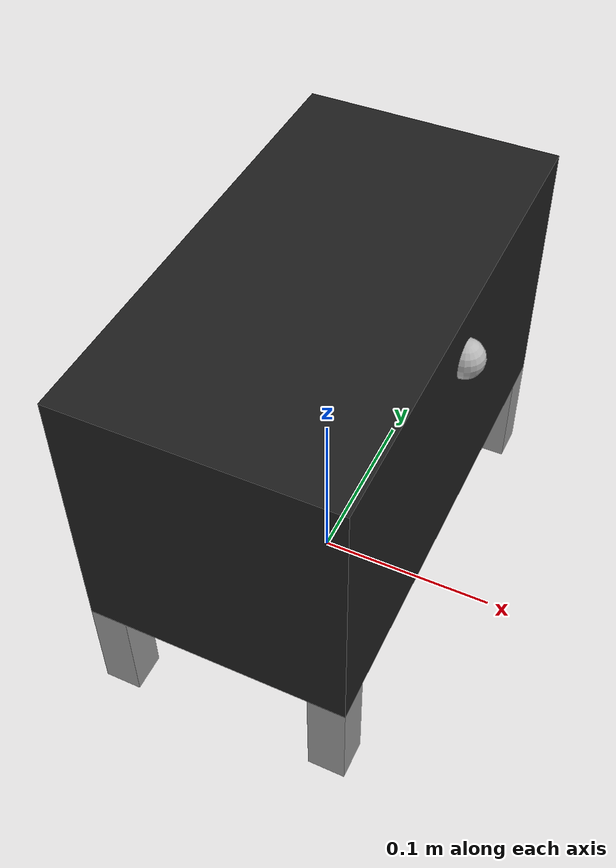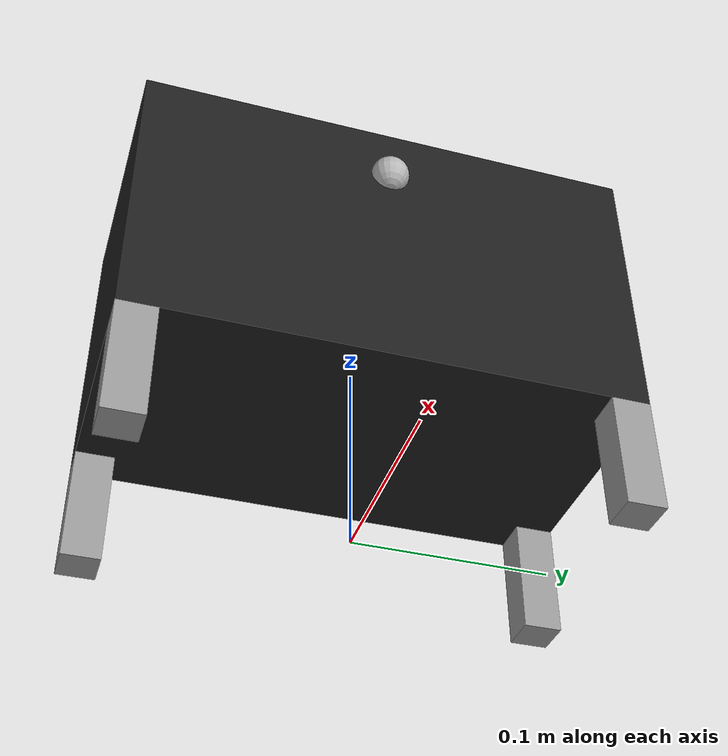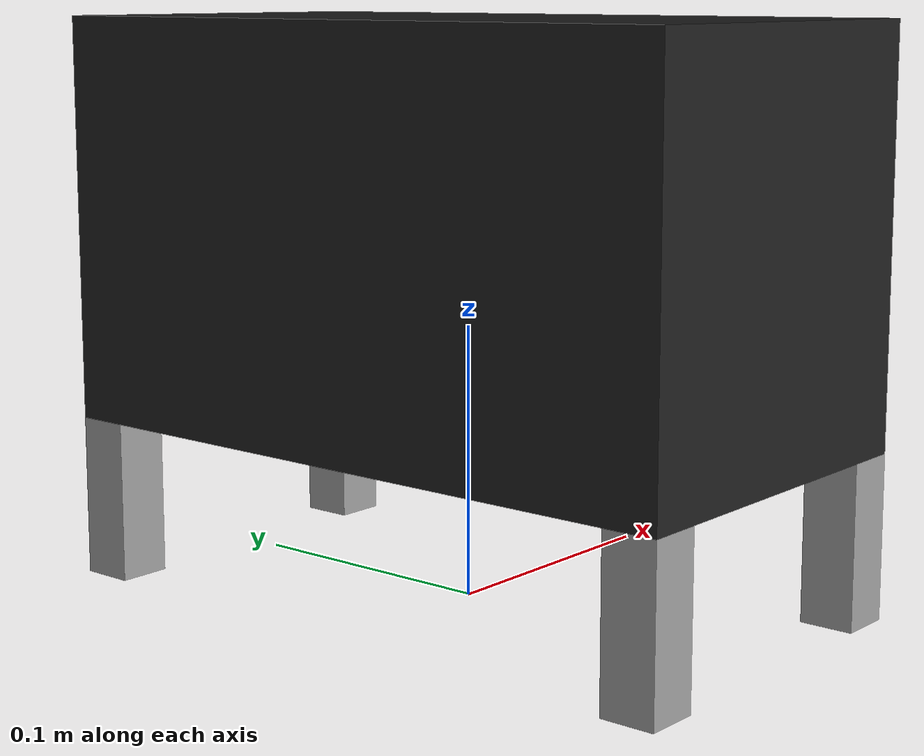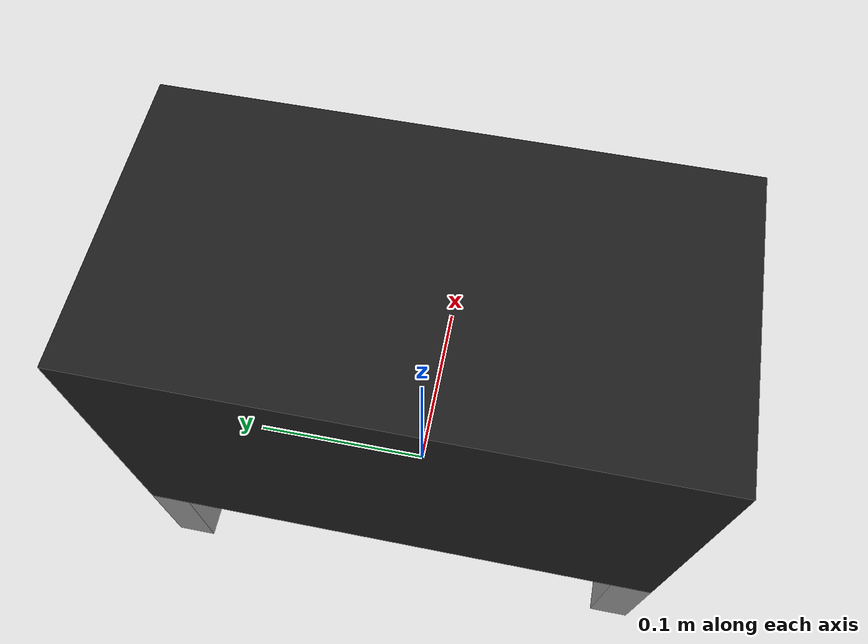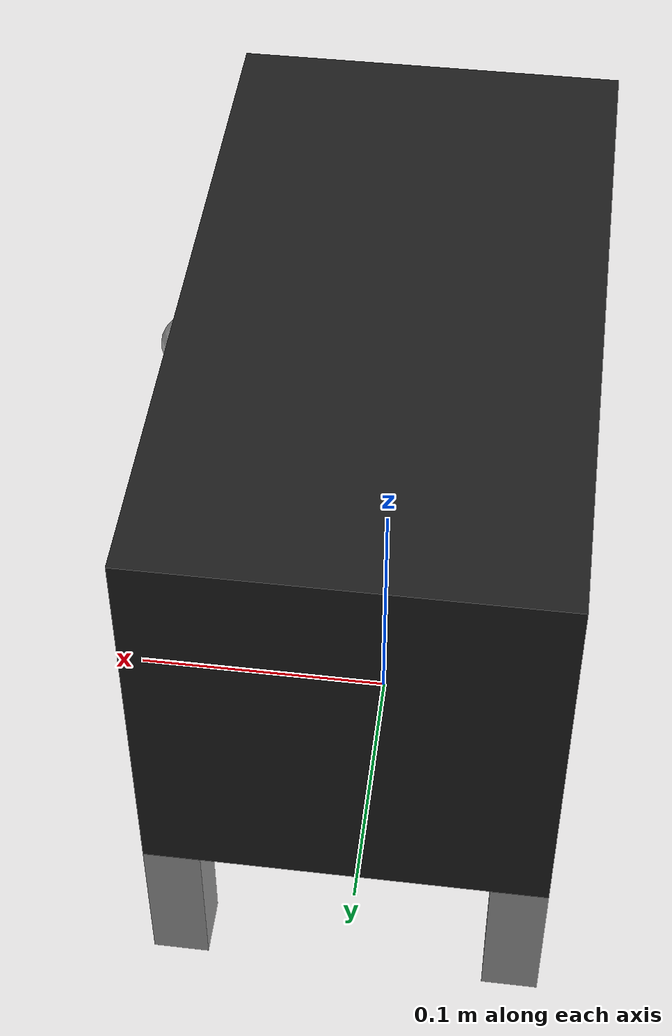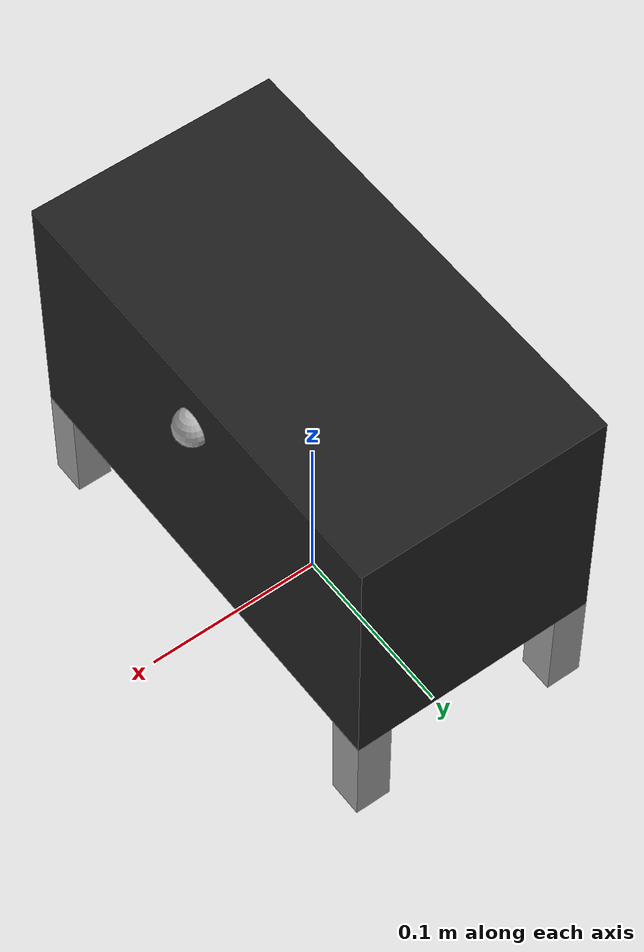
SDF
<?xml version="1.0" ?>
<sdf version='1.6'>
  <model name='tbox'>
    <static>0</static>
    <link name='tbox_base_link'>
      <pose>0 0 0 0 0 0</pose>
      <inertial>
        <pose>0.000598 0 0.121026 0 -0 0</pose>
        <mass>0.585</mass>
        <inertia>
          <ixx>0.00733788</ixx>
          <ixy>0</ixy>
          <ixz>-2.0641e-05</ixz>
          <iyy>0.00649818</iyy>
          <iyz>-1.35525e-20</iyz>
          <izz>0.00687229</izz>
        </inertia>
      </inertial>

      <!-- Box main body -->
      <collision name='tbox_base_collision'>
        <pose>0 0 0.135 0 0 0</pose>
        <geometry>
          <box>
            <size>0.14 0.26 0.15</size>
          </box>
        </geometry>
      </collision>
      <visual name='tbox_base_link_visual'>
        <pose>0 0 0.135 0 0 0</pose>
        <geometry>
          <box>
            <size>0.14 0.26 0.15</size>
          </box>
        </geometry>
        <material>
          <script>
            <uri>file://media/materials/scripts/gazebo.material</uri>
            <name>Gazebo/FlatBlack</name>
          </script>
        </material>
      </visual>

      <!-- Foot 1 -->
      <collision name='tbox_foot1_collision'>
        <pose>-0.06 0.12 0.03 0 0 0</pose>
        <geometry>
          <box>
            <size>0.02 0.02 0.06</size>
          </box>
        </geometry>
      </collision>
      <visual name='tbox_foot1_visual'>
        <pose>-0.06 0.12 0.03 0 0 0</pose>
        <geometry>
          <box>
            <size>0.02 0.02 0.06</size>
          </box>
        </geometry>
        <material>
          <script>
            <uri>file://media/materials/scripts/gazebo.material</uri>
            <name>Gazebo/Grey</name>
          </script>
        </material>
      </visual>

      <!-- Foot 2 -->
      <collision name='tbox_foot2_collision'>
        <pose>0.06 0.12 0.03 0 0 0</pose>
        <geometry>
          <box>
            <size>0.02 0.02 0.06</size>
          </box>
        </geometry>
      </collision>
      <visual name='tbox_foot2_visual'>
        <pose>0.06 0.12 0.03 0 0 0</pose>
        <geometry>
          <box>
            <size>0.02 0.02 0.06</size>
          </box>
        </geometry>
        <material>
          <script>
            <uri>file://media/materials/scripts/gazebo.material</uri>
            <name>Gazebo/Grey</name>
          </script>
        </material>
      </visual>

      <!-- Foot 3 -->
      <collision name='tbox_foot3_collision'>
        <pose>-0.06 -0.12 0.03 0 0 0</pose>
        <geometry>
          <box>
            <size>0.02 0.02 0.06</size>
          </box>
        </geometry>
      </collision>
      <visual name='tbox_foot3_visual'>
        <pose>-0.06 -0.12 0.03 0 0 0</pose>
        <geometry>
          <box>
            <size>0.02 0.02 0.06</size>
          </box>
        </geometry>
        <material>
          <script>
            <uri>file://media/materials/scripts/gazebo.material</uri>
            <name>Gazebo/Grey</name>
          </script>
        </material>
      </visual>

      <!-- Foot 4 -->
      <collision name='tbox_foot4_collision'>
        <pose>0.06 -0.12 0.03 0 0 0</pose>
        <geometry>
          <box>
            <size>0.02 0.02 0.06</size>
          </box>
        </geometry>
      </collision>
      <visual name='tbox_foot4_visual'>
        <pose>0.06 -0.12 0.03 0 0 0</pose>
        <geometry>
          <box>
            <size>0.02 0.02 0.06</size>
          </box>
        </geometry>
        <material>
          <script>
            <uri>file://media/materials/scripts/gazebo.material</uri>
            <name>Gazebo/Grey</name>
          </script>
        </material>
      </visual>

      <!-- LED -->
      <collision name='tbox_LED_collision'>
        <pose>0.07 0 0.18 0 0 0</pose>
        <geometry>
          <sphere>
            <radius>0.01</radius>
          </sphere>
        </geometry>
      </collision>
      <visual name='tbox_LED_visual'>
        <pose>0.07 0 0.18 0 -0 0</pose>
        <geometry>
          <sphere>
            <radius>0.01</radius>
          </sphere>
        </geometry>
      </visual>

      <gravity>1</gravity>
      <velocity_decay/>
    </link>

    <!-- Plugin controller -->
    <plugin name='tbox_tbox_controller' filename='libtbox_plugin.so'>
      <alwaysOn>true</alwaysOn>
      <update>100</update>
      <updateRate>10.0</updateRate>
      <ledVisual>tbox_LED_visual</ledVisual>
      <baseLink>tbox_base_link</baseLink>
    </plugin>
  </model>
</sdf>
